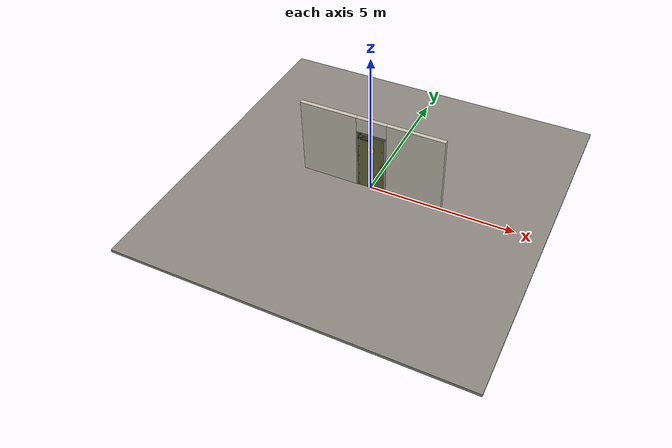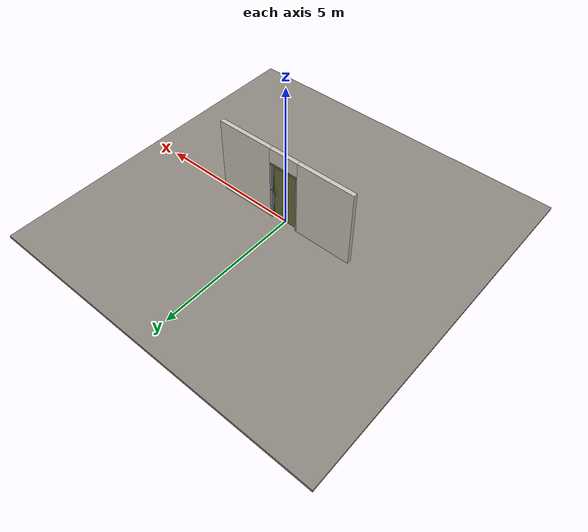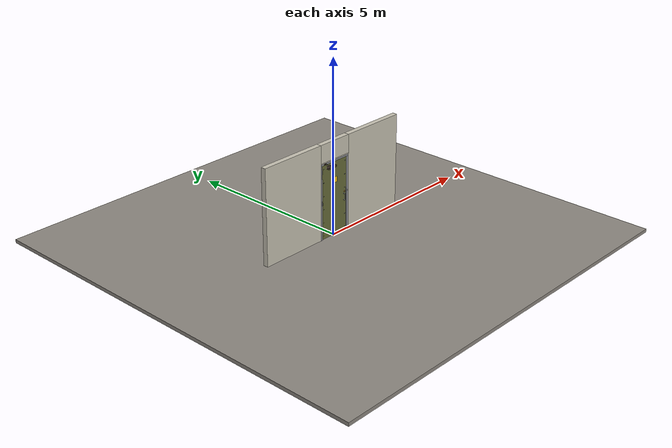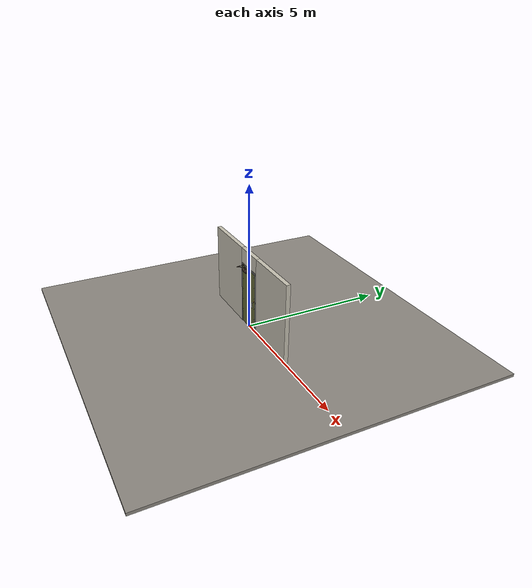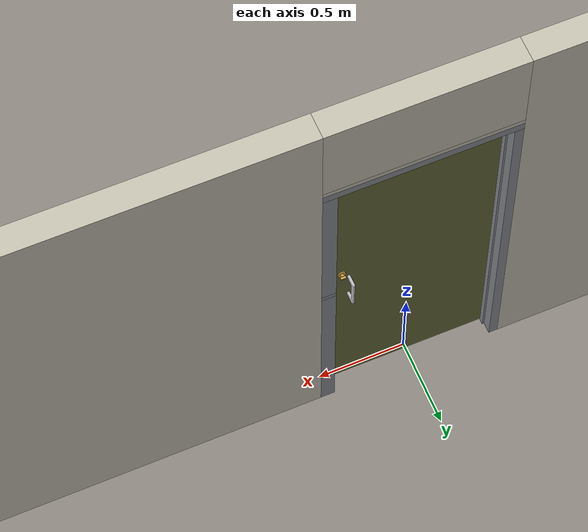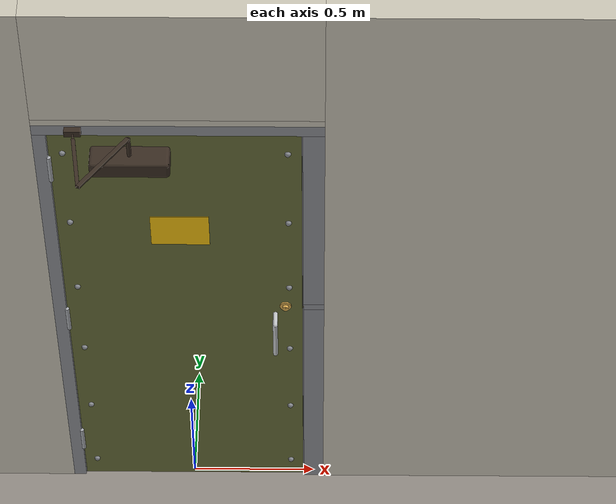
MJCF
<?xml version="1.0" ?>
<mujoco model="db0270_swing_single_full">
  <compiler angle="radian" meshdir="../../hardware" texturedir="../../textures" autolimits="true" inertiafromgeom="false"/>
  <option timestep="0.002" integrator="implicitfast" cone="elliptic" impratio="10" noslip_iterations="3">
    <flag multiccd="enable"/>
  </option>
  <size memory="16M"/>
  <default>
    <geom condim="4" solref="0.005 1" solimp="0.95 0.99 0.001"/>
    <joint solreflimit="0.005 1" solimplimit="0.95 0.99 0.001"/>
    <tendon solreflimit="0.005 1"/>
    <equality solref="0.002 1"/>
  </default>
  <visual>
    <headlight ambient="0.4 0.4 0.4" diffuse="0.7 0.7 0.7" specular="0.2 0.2 0.2"/>
    <quality shadowsize="4096"/>
    <map znear="0.01" zfar="60"/>
  </visual>
  <asset>
    <mesh name="closer_body_fdc4667657" file="closer_body_fdc4667657.obj"/>
    <mesh name="cyl_face_e9e5036966" file="cyl_face_e9e5036966.obj"/>
    <mesh name="hinge_ed08f20e7f" file="hinge_ed08f20e7f.obj"/>
    <mesh name="hinge_jamb_1278ce3e25" file="hinge_jamb_1278ce3e25.obj"/>
    <mesh name="pull_1e5d69a91a" file="pull_1e5d69a91a.obj"/>
    <mesh name="thumbturn_eb5c9899a3" file="thumbturn_eb5c9899a3.obj"/>
    <material name="mat_floor" rgba="0.55 0.53 0.5 1" specular="0.2" shininess="0.15" reflectance="0"/>
    <material name="mat_wall" rgba="0.78 0.76 0.7 1" specular="0.2" shininess="0.1" reflectance="0"/>
    <material name="mat_leaf" rgba="0.4 0.42 0.22 1" specular="0.23" shininess="0.5" reflectance="0.02"/>
    <material name="mat_rivet" rgba="0.55 0.56 0.58 1" specular="0.8" shininess="0.55" reflectance="0.4"/>
    <material name="mat_hinge" rgba="0.65 0.66 0.68 1" specular="0.74" shininess="0.5" reflectance="0.36"/>
    <material name="mat_op_stainless" rgba="0.75 0.76 0.77 1" specular="0.8" shininess="0.65" reflectance="0.4"/>
    <material name="mat_deadbolt" rgba="0.85 0.66 0.3 1" specular="0.8" shininess="0.75" reflectance="0.4"/>
    <material name="mat_frame" rgba="0.55 0.56 0.58 1" specular="0.8" shininess="0.55" reflectance="0.4"/>
    <material name="mat_closer" rgba="0.22 0.17 0.13 1" specular="0.8" shininess="0.6" reflectance="0.4"/>
    <material name="mat_placard" rgba="0.95 0.75 0.05 1" specular="0.2" shininess="0.5" reflectance="0"/>
    <texture name="skybox" type="skybox" builtin="gradient" rgb1="0.6 0.7 0.85" rgb2="0.9 0.92 0.95" width="256" height="256"/>
  </asset>
  <worldbody>
    <light name="sun" pos="1.5 -2.5 4" dir="-0.3 0.5 -0.8" directional="true" diffuse="0.8 0.8 0.8" specular="0.3 0.3 0.3" castshadow="true"/>
    <light name="fill" pos="-1.5 2.5 3" dir="0.3 -0.5 -0.7" directional="true" diffuse="0.35 0.35 0.4" castshadow="false"/>
    <camera name="robot_view" pos="0 -2.594313 1.812087" xyaxes="1 0 0 0 0.26963 0.962964" fovy="52"/>
    <camera name="far_view" pos="0 2.681312 1.812087" xyaxes="-1 0 0 0 -0.26963 0.962964" fovy="52"/>
    <camera name="iso" pos="2.004737 -2.172262 2.234138" xyaxes="0.741536 0.670913 0 -0.242917 0.268487 0.932151" fovy="46"/>
    <camera name="detail_handle" pos="0.5315 -0.882 1.296" xyaxes="0.97561 0.219512 0 -0.070934 0.315262 0.94635" fovy="38"/>
    <geom name="floor" type="box" size="6 6 0.05" pos="0 0 -0.05" material="mat_floor" group="0" contype="1" conaffinity="1" friction="0.8 0.005 0.0001" density="2400"/>
    <geom name="wall_left" type="box" size="0.99475 0.0725 1.3735" pos="-1.50525 0.0435 1.3735" material="mat_wall" group="0" contype="1" conaffinity="1" friction="0.6 0.005 0.0001" density="800"/>
    <geom name="wall_right" type="box" size="0.97975 0.0725 1.3735" pos="1.52025 0.0435 1.3735" material="mat_wall" group="0" contype="1" conaffinity="1" friction="0.6 0.005 0.0001" density="800"/>
    <geom name="wall_header" type="box" size="0.5255 0.0725 0.26" pos="0.015 0.0435 2.487" material="mat_wall" group="0" contype="1" conaffinity="1" friction="0.6 0.005 0.0001" density="800"/>
    <geom name="hinge_0_jamb" type="mesh" mesh="hinge_jamb_1278ce3e25" pos="-0.4575 -0.029 0.259" material="mat_hinge" group="1" contype="0" conaffinity="0" density="7850"/>
    <geom name="hinge_1_jamb" type="mesh" mesh="hinge_jamb_1278ce3e25" pos="-0.4575 -0.029 1.076" material="mat_hinge" group="1" contype="0" conaffinity="0" density="7850"/>
    <geom name="hinge_2_jamb" type="mesh" mesh="hinge_jamb_1278ce3e25" pos="-0.4575 -0.029 1.963" material="mat_hinge" group="1" contype="0" conaffinity="0" density="7850"/>
    <geom name="leaf_deadbolt_strike_b" type="box" size="0.0155 0.003 0.0005" pos="0.46 0 1.1375" quat="-0.5 -0.5 0.5 0.5" material="mat_deadbolt" group="1" contype="0" conaffinity="0" density="7800"/>
    <geom name="leaf_deadbolt_strike_l" type="box" size="0.003 0.0155 0.0005" pos="0.46 0.0125 1.156" quat="-0.5 -0.5 0.5 0.5" material="mat_deadbolt" group="1" contype="0" conaffinity="0" density="7800"/>
    <geom name="leaf_deadbolt_strike_t" type="box" size="0.0155 0.003 0.0005" pos="0.46 0 1.1745" quat="-0.5 -0.5 0.5 0.5" material="mat_deadbolt" group="1" contype="0" conaffinity="0" density="7800"/>
    <geom name="leaf_deadbolt_strike_r" type="box" size="0.003 0.0155 0.0005" pos="0.46 -0.0125 1.156" quat="-0.5 -0.5 0.5 0.5" material="mat_deadbolt" group="1" contype="0" conaffinity="0" density="7800"/>
    <geom name="jamb_hinge" type="box" size="0.025 0.0725 1.0735" pos="-0.4855 0.0435 1.0735" material="mat_frame" group="0" contype="1" conaffinity="1" friction="0.6 0.005 0.0001" density="300"/>
    <geom name="strike_1156_wall_n" type="box" size="0.04 0.05325 0.0155" pos="0.5005 0.06275 1.156" material="mat_frame" group="0" contype="1" conaffinity="1" friction="0.6 0.005 0.0001" density="300"/>
    <geom name="strike_1156_wall_p" type="box" size="0.04 0.00975 0.0155" pos="0.5005 -0.01925 1.156" material="mat_frame" group="0" contype="1" conaffinity="1" friction="0.6 0.005 0.0001" density="300"/>
    <geom name="strike_1156_back" type="box" size="0.0253 0.0095 0.0155" pos="0.5152 0 1.156" material="mat_frame" group="0" contype="1" conaffinity="1" friction="0.6 0.005 0.0001" density="300"/>
    <geom name="jamb_strike_0" type="box" size="0.04 0.0725 0.57025" pos="0.5005 0.0435 0.57025" material="mat_frame" group="0" contype="1" conaffinity="1" friction="0.6 0.005 0.0001" density="300"/>
    <geom name="jamb_strike_1" type="box" size="0.04 0.0725 0.48775" pos="0.5005 0.0435 1.65925" material="mat_frame" group="0" contype="1" conaffinity="1" friction="0.6 0.005 0.0001" density="300"/>
    <geom name="jamb_head" type="box" size="0.5255 0.0725 0.025" pos="0.015 0.0435 2.172" material="mat_frame" group="0" contype="1" conaffinity="1" friction="0.6 0.005 0.0001" density="300"/>
    <geom name="head_stud" type="box" size="0.5255 0.0725 0.015" pos="0.015 0.0435 2.212" material="mat_wall" group="0" contype="1" conaffinity="1" friction="0.6 0.005 0.0001" density="500"/>
    <geom name="stop_hinge" type="box" size="0.0055 0.016 1.0735" pos="-0.455 0.0385 1.0735" material="mat_frame" group="0" contype="1" conaffinity="1" friction="0.6 0.005 0.0001" density="300"/>
    <geom name="stop_strike" type="box" size="0.0055 0.016 1.0735" pos="0.455 0.0385 1.0735" material="mat_frame" group="0" contype="1" conaffinity="1" friction="0.6 0.005 0.0001" density="300"/>
    <geom name="stop_head" type="box" size="0.4605 0.016 0.0055" pos="0 0.0385 2.1415" material="mat_frame" group="0" contype="1" conaffinity="1" friction="0.6 0.005 0.0001" density="300"/>
    <geom name="closer_bracket" type="box" size="0.03 0.012 0.014" pos="-0.3605 -0.041 2.177" material="mat_closer" group="1" contype="0" conaffinity="0" density="2700"/>
    <site name="approach_point" pos="0 -1.5 0" quat="1 0 0 0" size="0.05" rgba="0.2 0.9 0.2 0.5" group="4"/>
    <site name="goal_point" pos="0 1.5 0" quat="1 0 0 0" size="0.05" rgba="0.2 0.9 0.2 0.5" group="4"/>
    <site name="door_plane_center" pos="0 0 1.0735" quat="1 0 0 0" size="0.02" rgba="0.2 0.9 0.2 0.5" group="4"/>
    <body name="leaf" pos="-0.4605 0 0">
      <inertial pos="0.435931 -0.010891 1.218965" mass="88.585433" quat="-0.495699 0.477644 0.512165 0.51364" diaginertia="5.83720147 39.239494144 44.941881251"/>
      <joint name="leaf_hinge" type="hinge" axis="0 0 -1" pos="0.003 -0.029 0" limited="true" range="0 1.745329" damping="12.268966" frictionloss="1.088256" stiffness="16.883156" springref="-2.607925" armature="0.02"/>
      <geom name="leaf_slab" type="box" size="0.457 0.022 1.067" pos="0.46 0 1.076" material="mat_leaf" group="0" contype="1" conaffinity="1" friction="0.45 0.005 0.0001" density="1"/>
      <geom name="leaf_rivet_0_0" type="sphere" size="0.012" pos="0.053 -0.022 0.109" material="mat_rivet" group="2" contype="0" conaffinity="0" density="7850"/>
      <geom name="leaf_rivet_0_1" type="sphere" size="0.012" pos="0.867 -0.022 0.109" material="mat_rivet" group="2" contype="0" conaffinity="0" density="7850"/>
      <geom name="leaf_rivet_1_0" type="sphere" size="0.012" pos="0.053 -0.022 0.4958" material="mat_rivet" group="2" contype="0" conaffinity="0" density="7850"/>
      <geom name="leaf_rivet_1_1" type="sphere" size="0.012" pos="0.867 -0.022 0.4958" material="mat_rivet" group="2" contype="0" conaffinity="0" density="7850"/>
      <geom name="leaf_rivet_2_0" type="sphere" size="0.012" pos="0.053 -0.022 0.8826" material="mat_rivet" group="2" contype="0" conaffinity="0" density="7850"/>
      <geom name="leaf_rivet_2_1" type="sphere" size="0.012" pos="0.867 -0.022 0.8826" material="mat_rivet" group="2" contype="0" conaffinity="0" density="7850"/>
      <geom name="leaf_rivet_3_0" type="sphere" size="0.012" pos="0.053 -0.022 1.2694" material="mat_rivet" group="2" contype="0" conaffinity="0" density="7850"/>
      <geom name="leaf_rivet_3_1" type="sphere" size="0.012" pos="0.867 -0.022 1.2694" material="mat_rivet" group="2" contype="0" conaffinity="0" density="7850"/>
      <geom name="leaf_rivet_4_0" type="sphere" size="0.012" pos="0.053 -0.022 1.6562" material="mat_rivet" group="2" contype="0" conaffinity="0" density="7850"/>
      <geom name="leaf_rivet_4_1" type="sphere" size="0.012" pos="0.867 -0.022 1.6562" material="mat_rivet" group="2" contype="0" conaffinity="0" density="7850"/>
      <geom name="leaf_rivet_5_0" type="sphere" size="0.012" pos="0.053 -0.022 2.043" material="mat_rivet" group="2" contype="0" conaffinity="0" density="7850"/>
      <geom name="leaf_rivet_5_1" type="sphere" size="0.012" pos="0.867 -0.022 2.043" material="mat_rivet" group="2" contype="0" conaffinity="0" density="7850"/>
      <geom name="hinge_0" type="mesh" mesh="hinge_ed08f20e7f" pos="0.003 -0.029 0.259" material="mat_hinge" group="1" contype="0" conaffinity="0" density="7850"/>
      <geom name="hinge_1" type="mesh" mesh="hinge_ed08f20e7f" pos="0.003 -0.029 1.076" material="mat_hinge" group="1" contype="0" conaffinity="0" density="7850"/>
      <geom name="hinge_2" type="mesh" mesh="hinge_ed08f20e7f" pos="0.003 -0.029 1.963" material="mat_hinge" group="1" contype="0" conaffinity="0" density="7850"/>
      <geom name="leaf_pull_n" type="mesh" mesh="pull_1e5d69a91a" pos="0.812 -0.022 1.016" quat="0.707107 0.707107 0 0" material="mat_op_stainless" group="1" contype="0" conaffinity="0" density="3000"/>
      <geom name="leaf_pull_col_n" type="capsule" size="0.0095 0.08" pos="0.812 -0.082 1.016" material="mat_op_stainless" group="3" contype="1" conaffinity="1" rgba="0.8 0.3 0.3 0.25" friction="0.7 0.01 0.0001" density="3000"/>
      <geom name="leaf_pull_p" type="mesh" mesh="pull_1e5d69a91a" pos="0.812 0.022 1.016" quat="-0.707107 0.707107 0 0" material="mat_op_stainless" group="1" contype="0" conaffinity="0" density="3000"/>
      <geom name="leaf_pull_col_p" type="capsule" size="0.0095 0.08" pos="0.812 0.082 1.016" material="mat_op_stainless" group="3" contype="1" conaffinity="1" rgba="0.8 0.3 0.3 0.25" friction="0.7 0.01 0.0001" density="3000"/>
      <geom name="leaf_deadbolt_faceplate" type="box" size="0.0006 0.014 0.0245" pos="0.9164 0 1.156" material="mat_deadbolt" group="1" contype="0" conaffinity="0" density="8500"/>
      <geom name="leaf_deadbolt_cylinder_face" type="mesh" mesh="cyl_face_e9e5036966" pos="0.852 -0.022 1.156" quat="0.707107 0.707107 0 0" material="mat_deadbolt" group="1" contype="0" conaffinity="0" density="7100"/>
      <geom name="closer_body" type="mesh" mesh="closer_body_fdc4667657" pos="0.3 -0.022 2.054" quat="0.707107 0.707107 0 0" material="mat_closer" group="1" contype="0" conaffinity="0" density="2000"/>
      <geom name="closer_body_col" type="box" size="0.145 0.05 0.035" pos="0.3 -0.072 2.054" material="mat_closer" group="3" contype="1" conaffinity="1" rgba="0.8 0.3 0.3 0.25" friction="0.6 0.005 0.0001" density="2000"/>
      <geom name="closer_pinion_shaft" type="cylinder" size="0.008 0.0615" pos="0.3 -0.072 2.1155" material="mat_closer" group="1" contype="0" conaffinity="0" density="2700"/>
      <geom name="warning_placard" type="box" size="0.11 0.001 0.08" pos="0.46 -0.023 1.6095" material="mat_placard" group="2" contype="0" conaffinity="0" density="1000"/>
      <site name="leaf_pull_grip_n" pos="0.812 -0.082 1.016" quat="1 0 0 0" size="0.012" rgba="0.2 0.9 0.2 0.5" group="4"/>
      <site name="leaf_pull_grip_p" pos="0.812 0.082 1.016" quat="1 0 0 0" size="0.012" rgba="0.2 0.9 0.2 0.5" group="4"/>
      <site name="leaf_edge_mid" pos="0.917 0 1.067" quat="1 0 0 0" size="0.02" rgba="0.2 0.9 0.2 0.5" group="4"/>
      <body name="leaf_deadbolt" pos="0.917 0 1.156">
        <inertial pos="-0.0277 0 0" mass="0.18836" quat="0 0 0.707107 0.707107" diaginertia="0.000013829 0.000052194 0.000057986"/>
        <joint name="leaf_deadbolt_slide" type="slide" axis="-1 0 0" limited="true" range="0 0.0254" damping="5" frictionloss="1.5" armature="0.1" ref="0.0254"/>
        <geom name="leaf_deadbolt_box" type="box" size="0.0277 0.008 0.0125" pos="-0.0277 0 0" material="mat_deadbolt" group="0" contype="1" conaffinity="1" friction="0.3 0.005 0.0001" density="8500"/>
      </body>
      <body name="leaf_deadbolt_thumbturn" pos="0.852 0.022 1.156">
        <inertial pos="0 0.012928 0" mass="0.178946" quat="0.707107 -0.000001 -0.000001 0.707107" diaginertia="0.000026045 0.000026215 0.000032438"/>
        <joint name="leaf_deadbolt_thumbturn_hinge" type="hinge" axis="0 -1 0" limited="true" range="0 1.5708" damping="0.05" frictionloss="0.35" armature="0.005" ref="1.5708"/>
        <geom name="leaf_deadbolt_thumbturn_mesh" type="mesh" mesh="thumbturn_eb5c9899a3" pos="0 0 0" quat="-0.499999 0.499999 0.500001 0.500001" material="mat_deadbolt" group="0" contype="1" conaffinity="1" friction="0.6 0.005 0.0001" density="7100"/>
        <geom name="leaf_deadbolt_thumbturn_col" type="box" size="0.006 0.012 0.016" pos="0 0.02 0" quat="0.707105 0 -0.707108 0" material="mat_deadbolt" group="3" contype="1" conaffinity="1" rgba="0.8 0.3 0.3 0.25" friction="0.6 0.005 0.0001" density="7100"/>
      </body>
      <body name="closer_arm_main" pos="0.3 -0.072 2.177" quat="0.454107 0 0 -0.890947">
        <inertial pos="0.14 0 0" mass="0.12096" quat="1 0 0 0" diaginertia="0.000003588 0.00079128 0.000792852"/>
        <joint name="closer_pinion" type="hinge" axis="0 0 1" limited="false" damping="0.01" armature="0.002"/>
        <geom name="closer_arm_main_geom" type="box" size="0.14 0.008 0.005" pos="0.14 0 0" material="mat_closer" group="1" contype="0" conaffinity="0" density="2700"/>
        <body name="closer_arm_fore" pos="0.28 0 0" quat="-0.373215 0 0 0.927745">
          <inertial pos="0.128088 0 0" mass="0.076531" quat="1 0 0 0" diaginertia="0.000001771 0.000437665 0.000438201"/>
          <joint name="closer_elbow" type="hinge" axis="0 0 1" limited="false" damping="0.01" armature="0.002"/>
          <geom name="closer_arm_fore_geom" type="box" size="0.1125 0.007 0.004" pos="0.1125 0 0" material="mat_closer" group="1" contype="0" conaffinity="0" density="2700"/>
          <geom name="closer_fore_neck" type="box" size="0.0175 0.003 0.003" pos="0.2425 0 0" material="mat_closer" group="1" contype="0" conaffinity="0" density="2700"/>
          <geom name="closer_fore_pivot" type="cylinder" size="0.005 0.012" pos="0.26 0 0" material="mat_closer" group="1" contype="0" conaffinity="0" density="2700"/>
        </body>
      </body>
    </body>
  </worldbody>
  <equality>
    <joint name="leaf_deadbolt_couple" joint1="leaf_deadbolt_slide" joint2="leaf_deadbolt_thumbturn_hinge" polycoef="0 0.01617 0 0 0" active="true"/>
    <connect name="closer_arm_connect" body1="closer_arm_fore" body2="world" anchor="0.26 0 0" active="true"/>
  </equality>
  <contact>
    <exclude body1="leaf_deadbolt" body2="leaf_deadbolt_thumbturn"/>
    <exclude body1="closer_arm_main" body2="leaf"/>
    <exclude body1="closer_arm_fore" body2="leaf"/>
    <exclude body1="closer_arm_main" body2="closer_arm_fore"/>
  </contact>
  <sensor>
    <jointpos name="leaf_hinge_pos" joint="leaf_hinge"/>
    <jointvel name="leaf_hinge_vel" joint="leaf_hinge"/>
    <jointpos name="leaf_deadbolt_slide_pos" joint="leaf_deadbolt_slide"/>
    <jointvel name="leaf_deadbolt_slide_vel" joint="leaf_deadbolt_slide"/>
    <jointpos name="leaf_deadbolt_thumbturn_hinge_pos" joint="leaf_deadbolt_thumbturn_hinge"/>
    <jointvel name="leaf_deadbolt_thumbturn_hinge_vel" joint="leaf_deadbolt_thumbturn_hinge"/>
  </sensor>
</mujoco>
